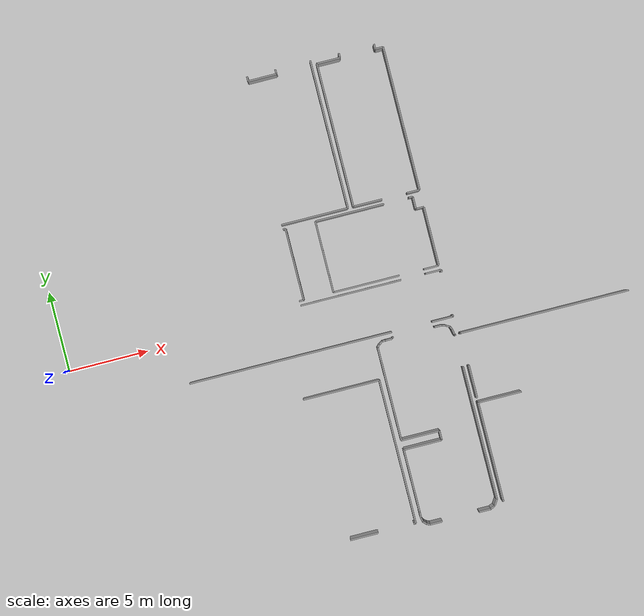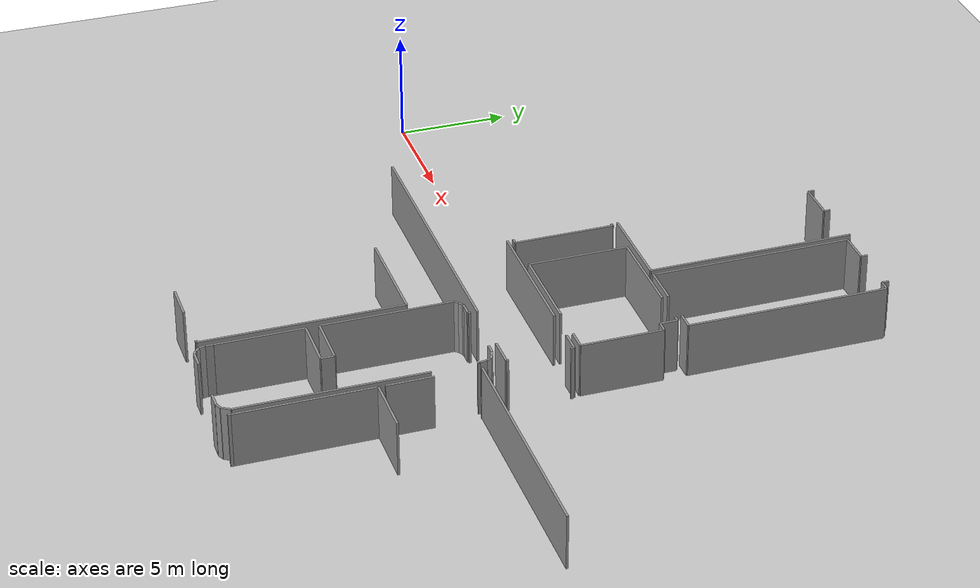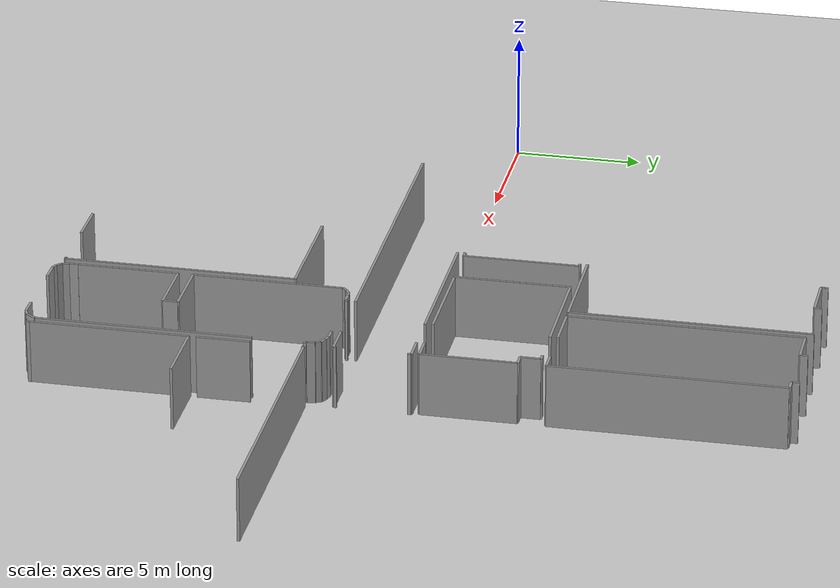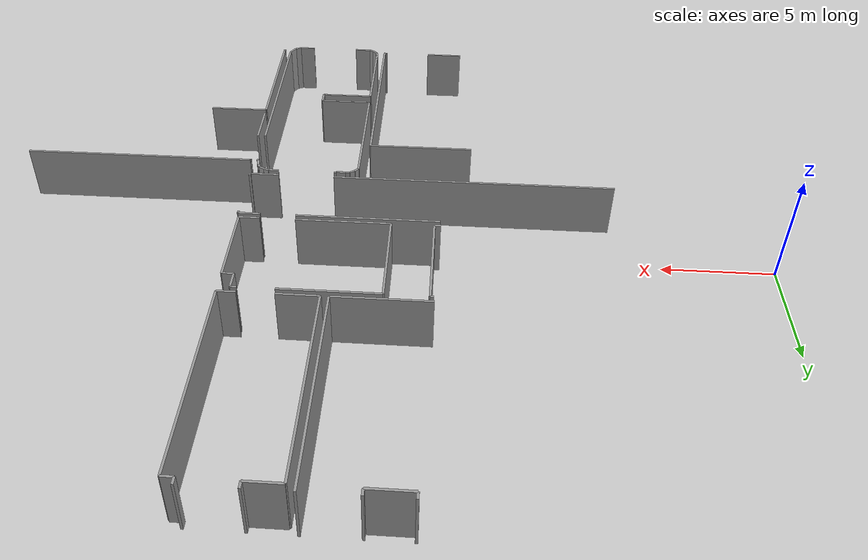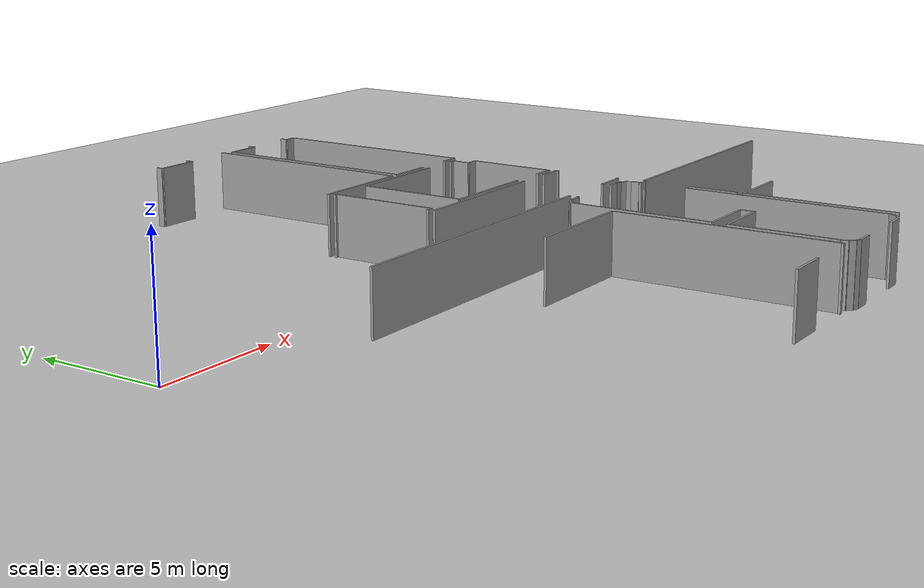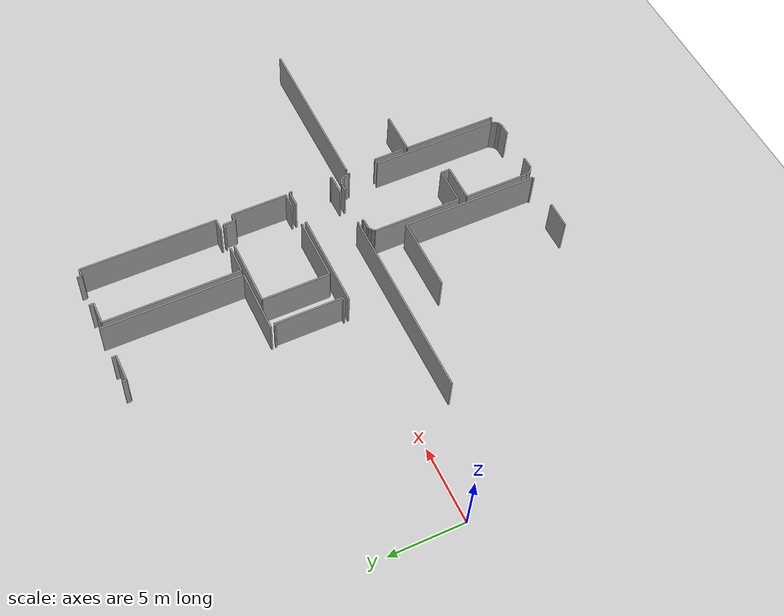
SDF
<sdf version="1.6">
 <world name="default">
  <model name="ground_plane">
   <static>1</static>
   <link name="link">
    <collision name="collision">
     <geometry><plane><normal>0 0 1</normal><size>100 100</size></plane></geometry>
     <surface><friction><ode><mu>100</mu><mu2>50</mu2></ode></friction></surface>
    </collision>
    <visual name="visual">
     <cast_shadows>0</cast_shadows>
     <geometry><plane><normal>0 0 1</normal><size>100 100</size></plane></geometry>
     <material>
      <script><uri>file://media/materials/scripts/gazebo.material</uri><name>Gazebo/Grey</name></script>
     </material>
    </visual>
   </link>
  </model>
  <model name="0510032268_A_40_1_102">
   <static>1</static>
   <link name="Wall_154">
    <collision name="Wall_154_Collision">
     <geometry><box><size>6.30847261809 0.1 2.5</size></box></geometry>
     <pose>3.15423630904 0 1.25 0 0 0</pose>
    </collision>
    <visual name="Wall_154_Visual">
     <pose>3.15423630904 0 1.25 0 0 0</pose>
     <geometry><box><size>6.30847261809 0.1 2.5</size></box></geometry>
     <material>
      <script><uri>file://media/materials/scripts/gazebo.material</uri><name>Gazebo/Grey</name></script>
      <ambient>1 1 1 1</ambient>
     </material>
    </visual>
    <pose>62.7405399572 -14.3330519072 0 0 0 0.0</pose>
   </link>
   <link name="Wall_155">
    <collision name="Wall_155_Collision">
     <geometry><box><size>0.985329871581 0.1 2.5</size></box></geometry>
     <pose>0.49266493579 0 1.25 0 0 0</pose>
    </collision>
    <visual name="Wall_155_Visual">
     <pose>0.49266493579 0 1.25 0 0 0</pose>
     <geometry><box><size>0.985329871581 0.1 2.5</size></box></geometry>
     <material>
      <script><uri>file://media/materials/scripts/gazebo.material</uri><name>Gazebo/Grey</name></script>
      <ambient>1 1 1 1</ambient>
     </material>
    </visual>
    <pose>70.5871225346 -14.3330519072 0 0 0 0.0</pose>
   </link>
   <link name="Wall_156">
    <collision name="Wall_156_Collision">
     <geometry><box><size>0.14892306911 0.1 2.5</size></box></geometry>
     <pose>0.0744615345551 0 1.25 0 0 0</pose>
    </collision>
    <visual name="Wall_156_Visual">
     <pose>0.0744615345551 0 1.25 0 0 0</pose>
     <geometry><box><size>0.14892306911 0.1 2.5</size></box></geometry>
     <material>
      <script><uri>file://media/materials/scripts/gazebo.material</uri><name>Gazebo/Grey</name></script>
      <ambient>1 1 1 1</ambient>
     </material>
    </visual>
    <pose>71.5724524062 -14.3330519072 0 0 0 -1.57079632679</pose>
   </link>
   <link name="Wall_157">
    <collision name="Wall_157_Collision">
     <geometry><box><size>0.108803981439 0.1 2.5</size></box></geometry>
     <pose>0.0544019907193 0 1.25 0 0 0</pose>
    </collision>
    <visual name="Wall_157_Visual">
     <pose>0.0544019907193 0 1.25 0 0 0</pose>
     <geometry><box><size>0.108803981439 0.1 2.5</size></box></geometry>
     <material>
      <script><uri>file://media/materials/scripts/gazebo.material</uri><name>Gazebo/Grey</name></script>
      <ambient>1 1 1 1</ambient>
     </material>
    </visual>
    <pose>71.5724524062 -17.1615745472 0 0 0 -1.57079632679</pose>
   </link>
   <link name="Wall_158">
    <collision name="Wall_158_Collision">
     <geometry><box><size>1.32646907593 0.1 2.5</size></box></geometry>
     <pose>0.663234537964 0 1.25 0 0 0</pose>
    </collision>
    <visual name="Wall_158_Visual">
     <pose>0.663234537964 0 1.25 0 0 0</pose>
     <geometry><box><size>1.32646907593 0.1 2.5</size></box></geometry>
     <material>
      <script><uri>file://media/materials/scripts/gazebo.material</uri><name>Gazebo/Grey</name></script>
      <ambient>1 1 1 1</ambient>
     </material>
    </visual>
    <pose>71.5724524062 -17.2703785287 0 0 0 3.14159265359</pose>
   </link>
   <link name="Wall_159">
    <collision name="Wall_159_Collision">
     <geometry><box><size>12.7053087964 0.1 2.5</size></box></geometry>
     <pose>6.35265439818 0 1.25 0 0 0</pose>
    </collision>
    <visual name="Wall_159_Visual">
     <pose>6.35265439818 0 1.25 0 0 0</pose>
     <geometry><box><size>12.7053087964 0.1 2.5</size></box></geometry>
     <material>
      <script><uri>file://media/materials/scripts/gazebo.material</uri><name>Gazebo/Grey</name></script>
      <ambient>1 1 1 1</ambient>
     </material>
    </visual>
    <pose>67.7137833188 -17.2703785287 0 0 0 3.14159265359</pose>
   </link>
   <link name="Wall_250">
    <collision name="Wall_250_Collision">
     <geometry><box><size>4.79232658969 0.1 2.5</size></box></geometry>
     <pose>2.39616329484 0 1.25 0 0 0</pose>
    </collision>
    <visual name="Wall_250_Visual">
     <pose>2.39616329484 0 1.25 0 0 0</pose>
     <geometry><box><size>4.79232658969 0.1 2.5</size></box></geometry>
     <material>
      <script><uri>file://media/materials/scripts/gazebo.material</uri><name>Gazebo/Grey</name></script>
      <ambient>1 1 1 1</ambient>
     </material>
    </visual>
    <pose>61.463457986 -19.9277602504 0 0 0 0.0</pose>
   </link>
   <link name="Wall_251">
    <collision name="Wall_251_Collision">
     <geometry><box><size>8.99213488139 0.1 2.5</size></box></geometry>
     <pose>4.49606744069 0 1.25 0 0 0</pose>
    </collision>
    <visual name="Wall_251_Visual">
     <pose>4.49606744069 0 1.25 0 0 0</pose>
     <geometry><box><size>8.99213488139 0.1 2.5</size></box></geometry>
     <material>
      <script><uri>file://media/materials/scripts/gazebo.material</uri><name>Gazebo/Grey</name></script>
      <ambient>1 1 1 1</ambient>
     </material>
    </visual>
    <pose>66.2557845757 -19.9277602504 0 0 0 -1.57079632679</pose>
   </link>
   <link name="Wall_252">
    <collision name="Wall_252_Collision">
     <geometry><box><size>0.129244402689 0.1 2.5</size></box></geometry>
     <pose>0.0646222013445 0 1.25 0 0 0</pose>
    </collision>
    <visual name="Wall_252_Visual">
     <pose>0.0646222013445 0 1.25 0 0 0</pose>
     <geometry><box><size>0.129244402689 0.1 2.5</size></box></geometry>
     <material>
      <script><uri>file://media/materials/scripts/gazebo.material</uri><name>Gazebo/Grey</name></script>
      <ambient>1 1 1 1</ambient>
     </material>
    </visual>
    <pose>66.2557845757 -28.9198951318 0 0 0 3.14159265359</pose>
   </link>
   <link name="Wall_253">
    <collision name="Wall_253_Collision">
     <geometry><box><size>1.74848125131 0.1 2.5</size></box></geometry>
     <pose>0.874240625655 0 1.25 0 0 0</pose>
    </collision>
    <visual name="Wall_253_Visual">
     <pose>0.874240625655 0 1.25 0 0 0</pose>
     <geometry><box><size>1.74848125131 0.1 2.5</size></box></geometry>
     <material>
      <script><uri>file://media/materials/scripts/gazebo.material</uri><name>Gazebo/Grey</name></script>
      <ambient>1 1 1 1</ambient>
     </material>
    </visual>
    <pose>63.8949794009 -28.9198951318 0 0 0 3.14159265359</pose>
   </link>
   <link name="Wall_304">
    <collision name="Wall_304_Collision">
     <geometry><box><size>0.153620557224 0.1 2.5</size></box></geometry>
     <pose>0.0768102786118 0 1.25 0 0 0</pose>
    </collision>
    <visual name="Wall_304_Visual">
     <pose>0.0768102786118 0 1.25 0 0 0</pose>
     <geometry><box><size>0.153620557224 0.1 2.5</size></box></geometry>
     <material>
      <script><uri>file://media/materials/scripts/gazebo.material</uri><name>Gazebo/Grey</name></script>
      <ambient>1 1 1 1</ambient>
     </material>
    </visual>
    <pose>62.8431229409 -9.56865632796 0 0 0 0.0</pose>
   </link>
   <link name="Wall_305">
    <collision name="Wall_305_Collision">
     <geometry><box><size>4.48368892472 0.1 2.5</size></box></geometry>
     <pose>2.24184446236 0 1.25 0 0 0</pose>
    </collision>
    <visual name="Wall_305_Visual">
     <pose>2.24184446236 0 1.25 0 0 0</pose>
     <geometry><box><size>4.48368892472 0.1 2.5</size></box></geometry>
     <material>
      <script><uri>file://media/materials/scripts/gazebo.material</uri><name>Gazebo/Grey</name></script>
      <ambient>1 1 1 1</ambient>
     </material>
    </visual>
    <pose>62.9967434981 -9.56865632796 0 0 0 -1.57079632679</pose>
   </link>
   <link name="Wall_306">
    <collision name="Wall_306_Collision">
     <geometry><box><size>0.278040512661 0.1 2.5</size></box></geometry>
     <pose>0.13902025633 0 1.25 0 0 0</pose>
    </collision>
    <visual name="Wall_306_Visual">
     <pose>0.13902025633 0 1.25 0 0 0</pose>
     <geometry><box><size>0.278040512661 0.1 2.5</size></box></geometry>
     <material>
      <script><uri>file://media/materials/scripts/gazebo.material</uri><name>Gazebo/Grey</name></script>
      <ambient>1 1 1 1</ambient>
     </material>
    </visual>
    <pose>62.9967434981 -14.0523452527 0 0 0 3.14159265359</pose>
   </link>
   <link name="Wall_308">
    <collision name="Wall_308_Collision">
     <geometry><box><size>4.46147107553 0.1 2.5</size></box></geometry>
     <pose>2.23073553777 0 1.25 0 0 0</pose>
    </collision>
    <visual name="Wall_308_Visual">
     <pose>2.23073553777 0 1.25 0 0 0</pose>
     <geometry><box><size>4.46147107553 0.1 2.5</size></box></geometry>
     <material>
      <script><uri>file://media/materials/scripts/gazebo.material</uri><name>Gazebo/Grey</name></script>
      <ambient>1 1 1 1</ambient>
     </material>
    </visual>
    <pose>64.8664707264 -14.0428233173 0 0 0 1.57079632679</pose>
   </link>
   <link name="Wall_309">
    <collision name="Wall_309_Collision">
     <geometry><box><size>4.3111514559 0.1 2.5</size></box></geometry>
     <pose>2.15557572795 0 1.25 0 0 0</pose>
    </collision>
    <visual name="Wall_309_Visual">
     <pose>2.15557572795 0 1.25 0 0 0</pose>
     <geometry><box><size>4.3111514559 0.1 2.5</size></box></geometry>
     <material>
      <script><uri>file://media/materials/scripts/gazebo.material</uri><name>Gazebo/Grey</name></script>
      <ambient>1 1 1 1</ambient>
     </material>
    </visual>
    <pose>64.8664707264 -9.58135224178 0 0 0 0.0</pose>
   </link>
   <link name="Wall_310">
    <collision name="Wall_310_Collision">
     <geometry><box><size>0.259250560207 0.1 2.5</size></box></geometry>
     <pose>0.129625280104 0 1.25 0 0 0</pose>
    </collision>
    <visual name="Wall_310_Visual">
     <pose>0.129625280104 0 1.25 0 0 0</pose>
     <geometry><box><size>0.259250560207 0.1 2.5</size></box></geometry>
     <material>
      <script><uri>file://media/materials/scripts/gazebo.material</uri><name>Gazebo/Grey</name></script>
      <ambient>1 1 1 1</ambient>
     </material>
    </visual>
    <pose>70.733506421 -9.58135224178 0 0 0 0.0</pose>
   </link>
   <link name="Wall_311">
    <collision name="Wall_311_Collision">
     <geometry><box><size>0.781560454768 0.1 2.5</size></box></geometry>
     <pose>0.390780227384 0 1.25 0 0 0</pose>
    </collision>
    <visual name="Wall_311_Visual">
     <pose>0.390780227384 0 1.25 0 0 0</pose>
     <geometry><box><size>0.781560454768 0.1 2.5</size></box></geometry>
     <material>
      <script><uri>file://media/materials/scripts/gazebo.material</uri><name>Gazebo/Grey</name></script>
      <ambient>1 1 1 1</ambient>
     </material>
    </visual>
    <pose>70.9927569812 -9.58135224178 0 0 0 -1.57079632679</pose>
   </link>
   <link name="Wall_312">
    <collision name="Wall_312_Collision">
     <geometry><box><size>0.498441576579 0.1 2.5</size></box></geometry>
     <pose>0.249220788289 0 1.25 0 0 0</pose>
    </collision>
    <visual name="Wall_312_Visual">
     <pose>0.249220788289 0 1.25 0 0 0</pose>
     <geometry><box><size>0.498441576579 0.1 2.5</size></box></geometry>
     <material>
      <script><uri>file://media/materials/scripts/gazebo.material</uri><name>Gazebo/Grey</name></script>
      <ambient>1 1 1 1</ambient>
     </material>
    </visual>
    <pose>70.9927569812 -10.3629126965 0 0 0 0.0</pose>
   </link>
   <link name="Wall_313">
    <collision name="Wall_313_Collision">
     <geometry><box><size>3.67991062077 0.1 2.5</size></box></geometry>
     <pose>1.83995531038 0 1.25 0 0 0</pose>
    </collision>
    <visual name="Wall_313_Visual">
     <pose>1.83995531038 0 1.25 0 0 0</pose>
     <geometry><box><size>3.67991062077 0.1 2.5</size></box></geometry>
     <material>
      <script><uri>file://media/materials/scripts/gazebo.material</uri><name>Gazebo/Grey</name></script>
      <ambient>1 1 1 1</ambient>
     </material>
    </visual>
    <pose>71.4911985577 -10.3629126965 0 0 0 -1.57079632679</pose>
   </link>
   <link name="Wall_314">
    <collision name="Wall_314_Collision">
     <geometry><box><size>0.921088547651 0.1 2.5</size></box></geometry>
     <pose>0.460544273825 0 1.25 0 0 0</pose>
    </collision>
    <visual name="Wall_314_Visual">
     <pose>0.460544273825 0 1.25 0 0 0</pose>
     <geometry><box><size>0.921088547651 0.1 2.5</size></box></geometry>
     <material>
      <script><uri>file://media/materials/scripts/gazebo.material</uri><name>Gazebo/Grey</name></script>
      <ambient>1 1 1 1</ambient>
     </material>
    </visual>
    <pose>71.4911985577 -14.0428233173 0 0 0 3.14159265359</pose>
   </link>
   <link name="Wall_315">
    <collision name="Wall_315_Collision">
     <geometry><box><size>4.1476280859 0.1 2.5</size></box></geometry>
     <pose>2.07381404295 0 1.25 0 0 0</pose>
    </collision>
    <visual name="Wall_315_Visual">
     <pose>2.07381404295 0 1.25 0 0 0</pose>
     <geometry><box><size>4.1476280859 0.1 2.5</size></box></geometry>
     <material>
      <script><uri>file://media/materials/scripts/gazebo.material</uri><name>Gazebo/Grey</name></script>
      <ambient>1 1 1 1</ambient>
     </material>
    </visual>
    <pose>69.0140988123 -14.0428233173 0 0 0 3.14159265359</pose>
   </link>
   <link name="Wall_333">
    <collision name="Wall_333_Collision">
     <geometry><box><size>3.91249976195 0.1 2.5</size></box></geometry>
     <pose>1.95624988098 0 1.25 0 0 0</pose>
    </collision>
    <visual name="Wall_333_Visual">
     <pose>1.95624988098 0 1.25 0 0 0</pose>
     <geometry><box><size>3.91249976195 0.1 2.5</size></box></geometry>
     <material>
      <script><uri>file://media/materials/scripts/gazebo.material</uri><name>Gazebo/Grey</name></script>
      <ambient>1 1 1 1</ambient>
     </material>
    </visual>
    <pose>66.6522779643 -28.3070633717 0 0 0 1.57079632679</pose>
   </link>
   <link name="Wall_334">
    <collision name="Wall_334_Collision">
     <geometry><box><size>2.38708571646 0.1 2.5</size></box></geometry>
     <pose>1.19354285823 0 1.25 0 0 0</pose>
    </collision>
    <visual name="Wall_334_Visual">
     <pose>1.19354285823 0 1.25 0 0 0</pose>
     <geometry><box><size>2.38708571646 0.1 2.5</size></box></geometry>
     <material>
      <script><uri>file://media/materials/scripts/gazebo.material</uri><name>Gazebo/Grey</name></script>
      <ambient>1 1 1 1</ambient>
     </material>
    </visual>
    <pose>66.6522779643 -24.3945636097 0 0 0 0.0</pose>
   </link>
   <link name="Wall_335">
    <collision name="Wall_335_Collision">
     <geometry><box><size>0.586932095905 0.1 2.5</size></box></geometry>
     <pose>0.293466047952 0 1.25 0 0 0</pose>
    </collision>
    <visual name="Wall_335_Visual">
     <pose>0.293466047952 0 1.25 0 0 0</pose>
     <geometry><box><size>0.586932095905 0.1 2.5</size></box></geometry>
     <material>
      <script><uri>file://media/materials/scripts/gazebo.material</uri><name>Gazebo/Grey</name></script>
      <ambient>1 1 1 1</ambient>
     </material>
    </visual>
    <pose>69.0393636808 -24.3945636097 0 0 0 1.57079632679</pose>
   </link>
   <link name="Wall_336">
    <collision name="Wall_336_Collision">
     <geometry><box><size>2.38594308422 0.1 2.5</size></box></geometry>
     <pose>1.19297154211 0 1.25 0 0 0</pose>
    </collision>
    <visual name="Wall_336_Visual">
     <pose>1.19297154211 0 1.25 0 0 0</pose>
     <geometry><box><size>2.38594308422 0.1 2.5</size></box></geometry>
     <material>
      <script><uri>file://media/materials/scripts/gazebo.material</uri><name>Gazebo/Grey</name></script>
      <ambient>1 1 1 1</ambient>
     </material>
    </visual>
    <pose>69.0393636808 -23.8076315138 0 0 0 3.14159265359</pose>
   </link>
   <link name="Wall_337">
    <collision name="Wall_337_Collision">
     <geometry><box><size>5.83669246053 0.1 2.5</size></box></geometry>
     <pose>2.91834623027 0 1.25 0 0 0</pose>
    </collision>
    <visual name="Wall_337_Visual">
     <pose>2.91834623027 0 1.25 0 0 0</pose>
     <geometry><box><size>5.83669246053 0.1 2.5</size></box></geometry>
     <material>
      <script><uri>file://media/materials/scripts/gazebo.material</uri><name>Gazebo/Grey</name></script>
      <ambient>1 1 1 1</ambient>
     </material>
    </visual>
    <pose>66.6534205966 -23.8076315138 0 0 0 1.57079632679</pose>
   </link>
   <link name="Wall_338">
    <collision name="Wall_338_Collision">
     <geometry><box><size>0.228298408065 0.1 2.5</size></box></geometry>
     <pose>0.114149204032 0 1.25 0 0 0</pose>
    </collision>
    <visual name="Wall_338_Visual">
     <pose>0.114149204032 0 1.25 0 0 0</pose>
     <geometry><box><size>0.228298408065 0.1 2.5</size></box></geometry>
     <material>
      <script><uri>file://media/materials/scripts/gazebo.material</uri><name>Gazebo/Grey</name></script>
      <ambient>1 1 1 1</ambient>
     </material>
    </visual>
    <pose>66.6534205966 -17.9709390533 0 0 0 0.791296640015</pose>
   </link>
   <link name="Wall_339">
    <collision name="Wall_339_Collision">
     <geometry><box><size>0.239747298272 0.1 2.5</size></box></geometry>
     <pose>0.119873649136 0 1.25 0 0 0</pose>
    </collision>
    <visual name="Wall_339_Visual">
     <pose>0.119873649136 0 1.25 0 0 0</pose>
     <geometry><box><size>0.239747298272 0.1 2.5</size></box></geometry>
     <material>
      <script><uri>file://media/materials/scripts/gazebo.material</uri><name>Gazebo/Grey</name></script>
      <ambient>1 1 1 1</ambient>
     </material>
    </visual>
    <pose>66.8138969473 -17.8085583155 0 0 0 0.543779763711</pose>
   </link>
   <link name="Wall_340">
    <collision name="Wall_340_Collision">
     <geometry><box><size>0.186674190873 0.1 2.5</size></box></geometry>
     <pose>0.0933370954366 0 1.25 0 0 0</pose>
    </collision>
    <visual name="Wall_340_Visual">
     <pose>0.0933370954366 0 1.25 0 0 0</pose>
     <geometry><box><size>0.186674190873 0.1 2.5</size></box></geometry>
     <material>
      <script><uri>file://media/materials/scripts/gazebo.material</uri><name>Gazebo/Grey</name></script>
      <ambient>1 1 1 1</ambient>
     </material>
    </visual>
    <pose>67.0190629146 -17.6845192375 0 0 0 0.076928377628</pose>
   </link>
   <link name="Wall_341">
    <collision name="Wall_341_Collision">
     <geometry><box><size>0.429629723673 0.1 2.5</size></box></geometry>
     <pose>0.214814861837 0 1.25 0 0 0</pose>
    </collision>
    <visual name="Wall_341_Visual">
     <pose>0.214814861837 0 1.25 0 0 0</pose>
     <geometry><box><size>0.429629723673 0.1 2.5</size></box></geometry>
     <material>
      <script><uri>file://media/materials/scripts/gazebo.material</uri><name>Gazebo/Grey</name></script>
      <ambient>1 1 1 1</ambient>
     </material>
    </visual>
    <pose>67.2051850112 -17.6701728549 0 0 0 0.0</pose>
   </link>
   <link name="Wall_342">
    <collision name="Wall_342_Collision">
     <geometry><box><size>0.0477366359637 0.1 2.5</size></box></geometry>
     <pose>0.0238683179819 0 1.25 0 0 0</pose>
    </collision>
    <visual name="Wall_342_Visual">
     <pose>0.0238683179819 0 1.25 0 0 0</pose>
     <geometry><box><size>0.0477366359637 0.1 2.5</size></box></geometry>
     <material>
      <script><uri>file://media/materials/scripts/gazebo.material</uri><name>Gazebo/Grey</name></script>
      <ambient>1 1 1 1</ambient>
     </material>
    </visual>
    <pose>67.6348147349 -17.6701728549 0 0 0 1.57079632679</pose>
   </link>
   <link name="Wall_343">
    <collision name="Wall_343_Collision">
     <geometry><box><size>0.109692695406 0.1 2.5</size></box></geometry>
     <pose>0.054846347703 0 1.25 0 0 0</pose>
    </collision>
    <visual name="Wall_343_Visual">
     <pose>0.054846347703 0 1.25 0 0 0</pose>
     <geometry><box><size>0.109692695406 0.1 2.5</size></box></geometry>
     <material>
      <script><uri>file://media/materials/scripts/gazebo.material</uri><name>Gazebo/Grey</name></script>
      <ambient>1 1 1 1</ambient>
     </material>
    </visual>
    <pose>67.6348147349 -17.6224362189 0 0 0 0.0</pose>
   </link>
   <link name="Wall_344">
    <collision name="Wall_344_Collision">
     <geometry><box><size>0.462893017882 0.1 2.5</size></box></geometry>
     <pose>0.231446508941 0 1.25 0 0 0</pose>
    </collision>
    <visual name="Wall_344_Visual">
     <pose>0.231446508941 0 1.25 0 0 0</pose>
     <geometry><box><size>0.462893017882 0.1 2.5</size></box></geometry>
     <material>
      <script><uri>file://media/materials/scripts/gazebo.material</uri><name>Gazebo/Grey</name></script>
      <ambient>1 1 1 1</ambient>
     </material>
    </visual>
    <pose>70.3123829595 -17.6224362189 0 0 0 0.0</pose>
   </link>
   <link name="Wall_345">
    <collision name="Wall_345_Collision">
     <geometry><box><size>0.235487299038 0.1 2.5</size></box></geometry>
     <pose>0.117743649519 0 1.25 0 0 0</pose>
    </collision>
    <visual name="Wall_345_Visual">
     <pose>0.117743649519 0 1.25 0 0 0</pose>
     <geometry><box><size>0.235487299038 0.1 2.5</size></box></geometry>
     <material>
      <script><uri>file://media/materials/scripts/gazebo.material</uri><name>Gazebo/Grey</name></script>
      <ambient>1 1 1 1</ambient>
     </material>
    </visual>
    <pose>70.7752759774 -17.6224362189 0 0 0 -0.308963527584</pose>
   </link>
   <link name="Wall_346">
    <collision name="Wall_346_Collision">
     <geometry><box><size>0.262908128641 0.1 2.5</size></box></geometry>
     <pose>0.131454064321 0 1.25 0 0 0</pose>
    </collision>
    <visual name="Wall_346_Visual">
     <pose>0.131454064321 0 1.25 0 0 0</pose>
     <geometry><box><size>0.262908128641 0.1 2.5</size></box></geometry>
     <material>
      <script><uri>file://media/materials/scripts/gazebo.material</uri><name>Gazebo/Grey</name></script>
      <ambient>1 1 1 1</ambient>
     </material>
    </visual>
    <pose>70.9996127746 -17.6940411728 0 0 0 -0.512257933283</pose>
   </link>
   <link name="Wall_347">
    <collision name="Wall_347_Collision">
     <geometry><box><size>0.213757116183 0.1 2.5</size></box></geometry>
     <pose>0.106878558092 0 1.25 0 0 0</pose>
    </collision>
    <visual name="Wall_347_Visual">
     <pose>0.106878558092 0 1.25 0 0 0</pose>
     <geometry><box><size>0.213757116183 0.1 2.5</size></box></geometry>
     <material>
      <script><uri>file://media/materials/scripts/gazebo.material</uri><name>Gazebo/Grey</name></script>
      <ambient>1 1 1 1</ambient>
     </material>
    </visual>
    <pose>71.2287740191 -17.8229046981 0 0 0 -1.15763768781</pose>
   </link>
   <link name="Wall_348">
    <collision name="Wall_348_Collision">
     <geometry><box><size>0.324792841548 0.1 2.5</size></box></geometry>
     <pose>0.162396420774 0 1.25 0 0 0</pose>
    </collision>
    <visual name="Wall_348_Visual">
     <pose>0.162396420774 0 1.25 0 0 0</pose>
     <geometry><box><size>0.324792841548 0.1 2.5</size></box></geometry>
     <material>
      <script><uri>file://media/materials/scripts/gazebo.material</uri><name>Gazebo/Grey</name></script>
      <ambient>1 1 1 1</ambient>
     </material>
    </visual>
    <pose>71.3145983965 -18.0186756892 0 0 0 -1.39318042903</pose>
   </link>
   <link name="Wall_349">
    <collision name="Wall_349_Collision">
     <geometry><box><size>0.033390253347 0.1 2.5</size></box></geometry>
     <pose>0.0166951266735 0 1.25 0 0 0</pose>
    </collision>
    <visual name="Wall_349_Visual">
     <pose>0.0166951266735 0 1.25 0 0 0</pose>
     <geometry><box><size>0.033390253347 0.1 2.5</size></box></geometry>
     <material>
      <script><uri>file://media/materials/scripts/gazebo.material</uri><name>Gazebo/Grey</name></script>
      <ambient>1 1 1 1</ambient>
     </material>
    </visual>
    <pose>71.371983927 -18.3383587992 0 0 0 0.0</pose>
   </link>
   <link name="Wall_350">
    <collision name="Wall_350_Collision">
     <geometry><box><size>0.109819654544 0.1 2.5</size></box></geometry>
     <pose>0.0549098272721 0 1.25 0 0 0</pose>
    </collision>
    <visual name="Wall_350_Visual">
     <pose>0.0549098272721 0 1.25 0 0 0</pose>
     <geometry><box><size>0.109819654544 0.1 2.5</size></box></geometry>
     <material>
      <script><uri>file://media/materials/scripts/gazebo.material</uri><name>Gazebo/Grey</name></script>
      <ambient>1 1 1 1</ambient>
     </material>
    </visual>
    <pose>71.4053741803 -18.3383587992 0 0 0 -1.57079632679</pose>
   </link>
   <link name="Wall_351">
    <collision name="Wall_351_Collision">
     <geometry><box><size>8.30744424907 0.1 2.5</size></box></geometry>
     <pose>4.15372212453 0 1.25 0 0 0</pose>
    </collision>
    <visual name="Wall_351_Visual">
     <pose>4.15372212453 0 1.25 0 0 0</pose>
     <geometry><box><size>8.30744424907 0.1 2.5</size></box></geometry>
     <material>
      <script><uri>file://media/materials/scripts/gazebo.material</uri><name>Gazebo/Grey</name></script>
      <ambient>1 1 1 1</ambient>
     </material>
    </visual>
    <pose>71.4053741803 -20.4030952638 0 0 0 -1.57079632679</pose>
   </link>
   <link name="Wall_352">
    <collision name="Wall_352_Collision">
     <geometry><box><size>0.43600163727 0.1 2.5</size></box></geometry>
     <pose>0.218000818635 0 1.25 0 0 0</pose>
    </collision>
    <visual name="Wall_352_Visual">
     <pose>0.218000818635 0 1.25 0 0 0</pose>
     <geometry><box><size>0.43600163727 0.1 2.5</size></box></geometry>
     <material>
      <script><uri>file://media/materials/scripts/gazebo.material</uri><name>Gazebo/Grey</name></script>
      <ambient>1 1 1 1</ambient>
     </material>
    </visual>
    <pose>71.4053741803 -28.7105395129 0 0 0 -2.12729675023</pose>
   </link>
   <link name="Wall_353">
    <collision name="Wall_353_Collision">
     <geometry><box><size>0.302224435162 0.1 2.5</size></box></geometry>
     <pose>0.151112217581 0 1.25 0 0 0</pose>
    </collision>
    <visual name="Wall_353_Visual">
     <pose>0.151112217581 0 1.25 0 0 0</pose>
     <geometry><box><size>0.302224435162 0.1 2.5</size></box></geometry>
     <material>
      <script><uri>file://media/materials/scripts/gazebo.material</uri><name>Gazebo/Grey</name></script>
      <ambient>1 1 1 1</ambient>
     </material>
    </visual>
    <pose>71.1750703036 -29.0807523599 0 0 0 -2.72097975956</pose>
   </link>
   <link name="Wall_354">
    <collision name="Wall_354_Collision">
     <geometry><box><size>0.74042569399 0.1 2.5</size></box></geometry>
     <pose>0.370212846995 0 1.25 0 0 0</pose>
    </collision>
    <visual name="Wall_354_Visual">
     <pose>0.370212846995 0 1.25 0 0 0</pose>
     <geometry><box><size>0.74042569399 0.1 2.5</size></box></geometry>
     <material>
      <script><uri>file://media/materials/scripts/gazebo.material</uri><name>Gazebo/Grey</name></script>
      <ambient>1 1 1 1</ambient>
     </material>
    </visual>
    <pose>70.8991880963 -29.2041566422 0 0 0 3.14159265359</pose>
   </link>
   <link name="Wall_355">
    <collision name="Wall_355_Collision">
     <geometry><box><size>0.768356704395 0.1 2.5</size></box></geometry>
     <pose>0.384178352197 0 1.25 0 0 0</pose>
    </collision>
    <visual name="Wall_355_Visual">
     <pose>0.384178352197 0 1.25 0 0 0</pose>
     <geometry><box><size>0.768356704395 0.1 2.5</size></box></geometry>
     <material>
      <script><uri>file://media/materials/scripts/gazebo.material</uri><name>Gazebo/Grey</name></script>
      <ambient>1 1 1 1</ambient>
     </material>
    </visual>
    <pose>67.8505183107 -29.2041566422 0 0 0 3.14159265359</pose>
   </link>
   <link name="Wall_356">
    <collision name="Wall_356_Collision">
     <geometry><box><size>0.208674250878 0.1 2.5</size></box></geometry>
     <pose>0.104337125439 0 1.25 0 0 0</pose>
    </collision>
    <visual name="Wall_356_Visual">
     <pose>0.104337125439 0 1.25 0 0 0</pose>
     <geometry><box><size>0.208674250878 0.1 2.5</size></box></geometry>
     <material>
      <script><uri>file://media/materials/scripts/gazebo.material</uri><name>Gazebo/Grey</name></script>
      <ambient>1 1 1 1</ambient>
     </material>
    </visual>
    <pose>67.0821616063 -29.2041566422 0 0 0 2.69018933061</pose>
   </link>
   <link name="Wall_357">
    <collision name="Wall_357_Collision">
     <geometry><box><size>0.265418577155 0.1 2.5</size></box></geometry>
     <pose>0.132709288578 0 1.25 0 0 0</pose>
    </collision>
    <visual name="Wall_357_Visual">
     <pose>0.132709288578 0 1.25 0 0 0</pose>
     <geometry><box><size>0.265418577155 0.1 2.5</size></box></geometry>
     <material>
      <script><uri>file://media/materials/scripts/gazebo.material</uri><name>Gazebo/Grey</name></script>
      <ambient>1 1 1 1</ambient>
     </material>
    </visual>
    <pose>66.8943890409 -29.1131269401 0 0 0 2.37513674394</pose>
   </link>
   <link name="Wall_358">
    <collision name="Wall_358_Collision">
     <geometry><box><size>0.274070200089 0.1 2.5</size></box></geometry>
     <pose>0.137035100044 0 1.25 0 0 0</pose>
    </collision>
    <visual name="Wall_358_Visual">
     <pose>0.137035100044 0 1.25 0 0 0</pose>
     <geometry><box><size>0.274070200089 0.1 2.5</size></box></geometry>
     <material>
      <script><uri>file://media/materials/scripts/gazebo.material</uri><name>Gazebo/Grey</name></script>
      <ambient>1 1 1 1</ambient>
     </material>
    </visual>
    <pose>66.7031885788 -28.9290361897 0 0 0 1.7964493818</pose>
   </link>
   <link name="Wall_359">
    <collision name="Wall_359_Collision">
     <geometry><box><size>0.355003472781 0.1 2.5</size></box></geometry>
     <pose>0.17750173639 0 1.25 0 0 0</pose>
    </collision>
    <visual name="Wall_359_Visual">
     <pose>0.17750173639 0 1.25 0 0 0</pose>
     <geometry><box><size>0.355003472781 0.1 2.5</size></box></geometry>
     <material>
      <script><uri>file://media/materials/scripts/gazebo.material</uri><name>Gazebo/Grey</name></script>
      <ambient>1 1 1 1</ambient>
     </material>
    </visual>
    <pose>66.641867315 -28.6619141629 0 0 0 1.54146663603</pose>
   </link>
   <link name="Wall_360">
    <collision name="Wall_360_Collision">
     <geometry><box><size>2.05343710127 0.1 2.5</size></box></geometry>
     <pose>1.02671855063 0 1.25 0 0 0</pose>
    </collision>
    <visual name="Wall_360_Visual">
     <pose>1.02671855063 0 1.25 0 0 0</pose>
     <geometry><box><size>2.05343710127 0.1 2.5</size></box></geometry>
     <material>
      <script><uri>file://media/materials/scripts/gazebo.material</uri><name>Gazebo/Grey</name></script>
      <ambient>1 1 1 1</ambient>
     </material>
    </visual>
    <pose>71.7598440942 -22.4442173287 0 0 0 1.57079632679</pose>
   </link>
   <link name="Wall_361">
    <collision name="Wall_361_Collision">
     <geometry><box><size>0.0663996292793 0.1 2.5</size></box></geometry>
     <pose>0.0331998146397 0 1.25 0 0 0</pose>
    </collision>
    <visual name="Wall_361_Visual">
     <pose>0.0331998146397 0 1.25 0 0 0</pose>
     <geometry><box><size>0.0663996292793 0.1 2.5</size></box></geometry>
     <material>
      <script><uri>file://media/materials/scripts/gazebo.material</uri><name>Gazebo/Grey</name></script>
      <ambient>1 1 1 1</ambient>
     </material>
    </visual>
    <pose>71.7598440942 -18.4220248713 0 0 0 1.57079632679</pose>
   </link>
   <link name="Wall_362">
    <collision name="Wall_362_Collision">
     <geometry><box><size>10.5692212961 0.1 2.5</size></box></geometry>
     <pose>5.28461064806 0 1.25 0 0 0</pose>
    </collision>
    <visual name="Wall_362_Visual">
     <pose>5.28461064806 0 1.25 0 0 0</pose>
     <geometry><box><size>10.5692212961 0.1 2.5</size></box></geometry>
     <material>
      <script><uri>file://media/materials/scripts/gazebo.material</uri><name>Gazebo/Grey</name></script>
      <ambient>1 1 1 1</ambient>
     </material>
    </visual>
    <pose>71.7598440942 -18.355625242 0 0 0 0.0</pose>
   </link>
   <link name="Wall_368">
    <collision name="Wall_368_Collision">
     <geometry><box><size>6.09137249176 0.1 2.5</size></box></geometry>
     <pose>3.04568624588 0 1.25 0 0 0</pose>
    </collision>
    <visual name="Wall_368_Visual">
     <pose>3.04568624588 0 1.25 0 0 0</pose>
     <geometry><box><size>6.09137249176 0.1 2.5</size></box></geometry>
     <material>
      <script><uri>file://media/materials/scripts/gazebo.material</uri><name>Gazebo/Grey</name></script>
      <ambient>1 1 1 1</ambient>
     </material>
    </visual>
    <pose>71.7537500555 -28.8195974126 0 0 0 1.57079632679</pose>
   </link>
   <link name="Wall_369">
    <collision name="Wall_369_Collision">
     <geometry><box><size>2.71400549733 0.1 2.5</size></box></geometry>
     <pose>1.35700274867 0 1.25 0 0 0</pose>
    </collision>
    <visual name="Wall_369_Visual">
     <pose>1.35700274867 0 1.25 0 0 0</pose>
     <geometry><box><size>2.71400549733 0.1 2.5</size></box></geometry>
     <material>
      <script><uri>file://media/materials/scripts/gazebo.material</uri><name>Gazebo/Grey</name></script>
      <ambient>1 1 1 1</ambient>
     </material>
    </visual>
    <pose>71.7537500555 -22.7282249208 0 0 0 0.0</pose>
   </link>
   <link name="Wall_374">
    <collision name="Wall_374_Collision">
     <geometry><box><size>0.133722691885 0.1 2.5</size></box></geometry>
     <pose>0.0668613459423 0 1.25 0 0 0</pose>
    </collision>
    <visual name="Wall_374_Visual">
     <pose>0.0668613459423 0 1.25 0 0 0</pose>
     <geometry><box><size>0.133722691885 0.1 2.5</size></box></geometry>
     <material>
      <script><uri>file://media/materials/scripts/gazebo.material</uri><name>Gazebo/Grey</name></script>
      <ambient>1 1 1 1</ambient>
     </material>
    </visual>
    <pose>71.7567970749 -28.9532853851 0 0 0 1.59358440418</pose>
   </link>
   <link name="Wall_415">
    <collision name="Wall_415_Collision">
     <geometry><box><size>8.98591388362 0.1 2.5</size></box></geometry>
     <pose>4.49295694181 0 1.25 0 0 0</pose>
    </collision>
    <visual name="Wall_415_Visual">
     <pose>4.49295694181 0 1.25 0 0 0</pose>
     <geometry><box><size>8.98591388362 0.1 2.5</size></box></geometry>
     <material>
      <script><uri>file://media/materials/scripts/gazebo.material</uri><name>Gazebo/Grey</name></script>
      <ambient>1 1 1 1</ambient>
     </material>
    </visual>
    <pose>67.3329059042 -9.28287130787 0 0 0 1.57079632679</pose>
   </link>
   <link name="Wall_416">
    <collision name="Wall_416_Collision">
     <geometry><box><size>1.45685611086 0.1 2.5</size></box></geometry>
     <pose>0.72842805543 0 1.25 0 0 0</pose>
    </collision>
    <visual name="Wall_416_Visual">
     <pose>0.72842805543 0 1.25 0 0 0</pose>
     <geometry><box><size>1.45685611086 0.1 2.5</size></box></geometry>
     <material>
      <script><uri>file://media/materials/scripts/gazebo.material</uri><name>Gazebo/Grey</name></script>
      <ambient>1 1 1 1</ambient>
     </material>
    </visual>
    <pose>67.3329059042 -0.296957424253 0 0 0 0.0</pose>
   </link>
   <link name="Wall_417">
    <collision name="Wall_417_Collision">
     <geometry><box><size>0.295941751147 0.1 2.5</size></box></geometry>
     <pose>0.147970875574 0 1.25 0 0 0</pose>
    </collision>
    <visual name="Wall_417_Visual">
     <pose>0.147970875574 0 1.25 0 0 0</pose>
     <geometry><box><size>0.295941751147 0.1 2.5</size></box></geometry>
     <material>
      <script><uri>file://media/materials/scripts/gazebo.material</uri><name>Gazebo/Grey</name></script>
      <ambient>1 1 1 1</ambient>
     </material>
    </visual>
    <pose>68.7897620151 -0.296957424253 0 0 0 1.57079632679</pose>
   </link>
   <link name="Wall_418">
    <collision name="Wall_418_Collision">
     <geometry><box><size>0.308383746691 0.1 2.5</size></box></geometry>
     <pose>0.154191873346 0 1.25 0 0 0</pose>
    </collision>
    <visual name="Wall_418_Visual">
     <pose>0.154191873346 0 1.25 0 0 0</pose>
     <geometry><box><size>0.308383746691 0.1 2.5</size></box></geometry>
     <material>
      <script><uri>file://media/materials/scripts/gazebo.material</uri><name>Gazebo/Grey</name></script>
      <ambient>1 1 1 1</ambient>
     </material>
    </visual>
    <pose>70.9996127746 -0.00101567310561 0 0 0 -1.57079632679</pose>
   </link>
   <link name="Wall_419">
    <collision name="Wall_419_Collision">
     <geometry><box><size>0.498949413131 0.1 2.5</size></box></geometry>
     <pose>0.249474706566 0 1.25 0 0 0</pose>
    </collision>
    <visual name="Wall_419_Visual">
     <pose>0.249474706566 0 1.25 0 0 0</pose>
     <geometry><box><size>0.498949413131 0.1 2.5</size></box></geometry>
     <material>
      <script><uri>file://media/materials/scripts/gazebo.material</uri><name>Gazebo/Grey</name></script>
      <ambient>1 1 1 1</ambient>
     </material>
    </visual>
    <pose>70.9996127746 -0.309399419797 0 0 0 0.0</pose>
   </link>
   <link name="Wall_420">
    <collision name="Wall_420_Collision">
     <geometry><box><size>8.97969288584 0.1 2.5</size></box></geometry>
     <pose>4.48984644292 0 1.25 0 0 0</pose>
    </collision>
    <visual name="Wall_420_Visual">
     <pose>4.48984644292 0 1.25 0 0 0</pose>
     <geometry><box><size>8.97969288584 0.1 2.5</size></box></geometry>
     <material>
      <script><uri>file://media/materials/scripts/gazebo.material</uri><name>Gazebo/Grey</name></script>
      <ambient>1 1 1 1</ambient>
     </material>
    </visual>
    <pose>71.4985621878 -0.309399419797 0 0 0 -1.57079632679</pose>
   </link>
   <link name="Wall_421">
    <collision name="Wall_421_Collision">
     <geometry><box><size>0.794891164279 0.1 2.5</size></box></geometry>
     <pose>0.397445582139 0 1.25 0 0 0</pose>
    </collision>
    <visual name="Wall_421_Visual">
     <pose>0.397445582139 0 1.25 0 0 0</pose>
     <geometry><box><size>0.794891164279 0.1 2.5</size></box></geometry>
     <material>
      <script><uri>file://media/materials/scripts/gazebo.material</uri><name>Gazebo/Grey</name></script>
      <ambient>1 1 1 1</ambient>
     </material>
    </visual>
    <pose>71.4985621878 -9.28909230564 0 0 0 3.14159265359</pose>
   </link>
   <link name="Wall_422">
    <collision name="Wall_422_Collision">
     <geometry><box><size>1.8100671238 0.1 2.5</size></box></geometry>
     <pose>0.905033561902 0 1.25 0 0 0</pose>
    </collision>
    <visual name="Wall_422_Visual">
     <pose>0.905033561902 0 1.25 0 0 0</pose>
     <geometry><box><size>1.8100671238 0.1 2.5</size></box></geometry>
     <material>
      <script><uri>file://media/materials/scripts/gazebo.material</uri><name>Gazebo/Grey</name></script>
      <ambient>1 1 1 1</ambient>
     </material>
    </visual>
    <pose>69.1429623376 -9.28909230564 0 0 0 3.13815575894</pose>
   </link>
   <link name="Wall_426">
    <collision name="Wall_426_Collision">
     <geometry><box><size>0.28870508027 0.1 2.5</size></box></geometry>
     <pose>0.144352540135 0 1.25 0 0 0</pose>
    </collision>
    <visual name="Wall_426_Visual">
     <pose>0.144352540135 0 1.25 0 0 0</pose>
     <geometry><box><size>0.28870508027 0.1 2.5</size></box></geometry>
     <material>
      <script><uri>file://media/materials/scripts/gazebo.material</uri><name>Gazebo/Grey</name></script>
      <ambient>1 1 1 1</ambient>
     </material>
    </visual>
    <pose>63.015914328 -0.00812538484488 0 0 0 -1.57079632679</pose>
   </link>
   <link name="Wall_427">
    <collision name="Wall_427_Collision">
     <geometry><box><size>1.77933232189 0.1 2.5</size></box></geometry>
     <pose>0.889666160946 0 1.25 0 0 0</pose>
    </collision>
    <visual name="Wall_427_Visual">
     <pose>0.889666160946 0 1.25 0 0 0</pose>
     <geometry><box><size>1.77933232189 0.1 2.5</size></box></geometry>
     <material>
      <script><uri>file://media/materials/scripts/gazebo.material</uri><name>Gazebo/Grey</name></script>
      <ambient>1 1 1 1</ambient>
     </material>
    </visual>
    <pose>63.015914328 -0.296830465115 0 0 0 0.0</pose>
   </link>
   <link name="Wall_428">
    <collision name="Wall_428_Collision">
     <geometry><box><size>0.285531101815 0.1 2.5</size></box></geometry>
     <pose>0.142765550907 0 1.25 0 0 0</pose>
    </collision>
    <visual name="Wall_428_Visual">
     <pose>0.142765550907 0 1.25 0 0 0</pose>
     <geometry><box><size>0.285531101815 0.1 2.5</size></box></geometry>
     <material>
      <script><uri>file://media/materials/scripts/gazebo.material</uri><name>Gazebo/Grey</name></script>
      <ambient>1 1 1 1</ambient>
     </material>
    </visual>
    <pose>64.7952466499 -0.296830465115 0 0 0 1.57079632679</pose>
   </link>
   <link name="Wall_429">
    <collision name="Wall_429_Collision">
     <geometry><box><size>9.27296849509 0.1 2.5</size></box></geometry>
     <pose>4.63648424754 0 1.25 0 0 0</pose>
    </collision>
    <visual name="Wall_429_Visual">
     <pose>4.63648424754 0 1.25 0 0 0</pose>
     <geometry><box><size>9.27296849509 0.1 2.5</size></box></geometry>
     <material>
      <script><uri>file://media/materials/scripts/gazebo.material</uri><name>Gazebo/Grey</name></script>
      <ambient>1 1 1 1</ambient>
     </material>
    </visual>
    <pose>66.9888466397 -0.0112993632999 0 0 0 -1.57079632679</pose>
   </link>
   <link name="Wall_430">
    <collision name="Wall_430_Collision">
     <geometry><box><size>4.17327383182 0.1 2.5</size></box></geometry>
     <pose>2.08663691591 0 1.25 0 0 0</pose>
    </collision>
    <visual name="Wall_430_Visual">
     <pose>2.08663691591 0 1.25 0 0 0</pose>
     <geometry><box><size>4.17327383182 0.1 2.5</size></box></geometry>
     <material>
      <script><uri>file://media/materials/scripts/gazebo.material</uri><name>Gazebo/Grey</name></script>
      <ambient>1 1 1 1</ambient>
     </material>
    </visual>
    <pose>66.9888466397 -9.28426785839 0 0 0 3.14159265359</pose>
   </link>
   <pose>-47.9 14.7321752544 0 0 0 0</pose>
  </model>
 </world>
</sdf>
